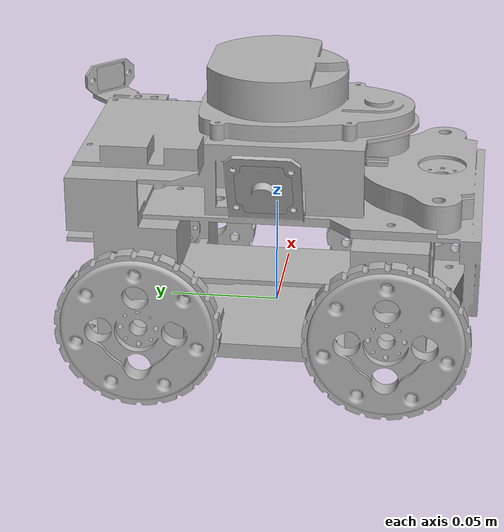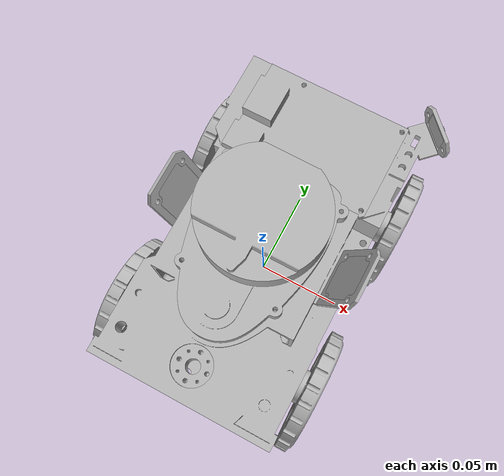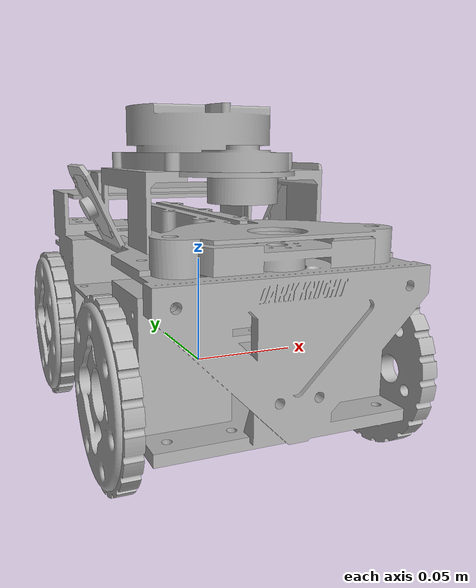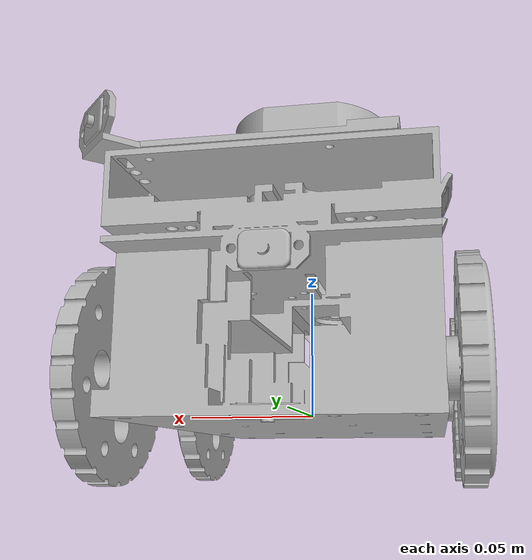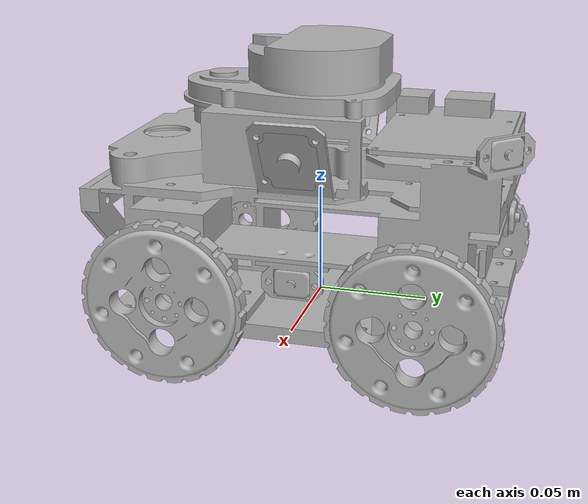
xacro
<?xml version="1.0" ?>
<robot name="darkie_maze_urdf" xmlns:xacro="http://www.ros.org/wiki/xacro">

<xacro:include filename="$(find darkie_maze_urdf_description)/urdf/materials.xacro" />
<xacro:include filename="$(find darkie_maze_urdf_description)/urdf/darkie_maze_urdf.ros2control" />
<xacro:include filename="$(find darkie_maze_urdf_description)/urdf/darkie_maze_urdf.gazebo" />
<link name="base_link">
  <inertial>
    <origin xyz="0.00014457353315521589 0.002656400548809099 0.03584925713705785" rpy="0 0 0"/>
    <mass value="0.29390296310653463"/>
    <inertia ixx="0.001205" iyy="0.000551" izz="0.001276" ixy="-1e-06" iyz="-3.2e-05" ixz="-2e-06"/>
  </inertial>
  <visual>
    <origin xyz="0 0 0" rpy="0 0 0"/>
    <geometry>
      <mesh filename="file://$(find darkie_maze_urdf_description)/meshes/base_link.stl" scale="0.001 0.001 0.001"/>
    </geometry>
    <material name="silver"/>
  </visual>
  <collision>
    <origin xyz="0 0 0" rpy="0 0 0"/>
    <geometry>
      <mesh filename="file://$(find darkie_maze_urdf_description)/meshes/base_link.stl" scale="0.001 0.001 0.001"/>
    </geometry>
  </collision>
</link>

<link name="lidar_top_1">
  <inertial>
    <origin xyz="-7.535587109046362e-07 0.00014401514588190112 0.010035646910176527" rpy="0 0 0"/>
    <mass value="0.057544028866058625"/>
    <inertia ixx="1.5e-05" iyy="1.7e-05" izz="2.9e-05" ixy="-0.0" iyz="-0.0" ixz="0.0"/>
  </inertial>
  <visual>
    <origin xyz="-0.0 -0.0005 -0.0992" rpy="0 0 0"/>
    <geometry>
      <mesh filename="file://$(find darkie_maze_urdf_description)/meshes/lidar_top_1.stl" scale="0.001 0.001 0.001"/>
    </geometry>
    <material name="silver"/>
  </visual>
  <collision>
    <origin xyz="-0.0 -0.0005 -0.0992" rpy="0 0 0"/>
    <geometry>
      <mesh filename="file://$(find darkie_maze_urdf_description)/meshes/lidar_top_1.stl" scale="0.001 0.001 0.001"/>
    </geometry>
  </collision>
</link>

<link name="lidar_bottom_1">
  <inertial>
    <origin xyz="-0.03099324634836214 -0.03846362431223608 0.002037131300966083" rpy="0 0 0"/>
    <mass value="0.04351090502849985"/>
    <inertia ixx="3.2e-05" iyy="1.1e-05" izz="4.2e-05" ixy="0.0" iyz="-2e-06" ixz="-0.0"/>
  </inertial>
  <visual>
    <origin xyz="-0.031 -0.0225 -0.092" rpy="0 0 0"/>
    <geometry>
      <mesh filename="file://$(find darkie_maze_urdf_description)/meshes/lidar_bottom_1.stl" scale="0.001 0.001 0.001"/>
    </geometry>
    <material name="silver"/>
  </visual>
  <collision>
    <origin xyz="-0.031 -0.0225 -0.092" rpy="0 0 0"/>
    <geometry>
      <mesh filename="file://$(find darkie_maze_urdf_description)/meshes/lidar_bottom_1.stl" scale="0.001 0.001 0.001"/>
    </geometry>
  </collision>
</link>

<link name="right_vl53lohsensor_1">
  <inertial>
    <origin xyz="-0.0046038229336554035 0.0010000010417378295 -0.003320723007513314" rpy="0 0 0"/>
    <mass value="0.0010511823088703786"/>
    <inertia ixx="0.0" iyy="0.0" izz="0.0" ixy="0.0" iyz="-0.0" ixz="0.0"/>
  </inertial>
  <visual>
    <origin xyz="-0.052 -0.0 -0.032" rpy="0 0 0"/>
    <geometry>
      <mesh filename="file://$(find darkie_maze_urdf_description)/meshes/right_vl53lohsensor_1.stl" scale="0.001 0.001 0.001"/>
    </geometry>
    <material name="silver"/>
  </visual>
  <collision>
    <origin xyz="-0.052 -0.0 -0.032" rpy="0 0 0"/>
    <geometry>
      <mesh filename="file://$(find darkie_maze_urdf_description)/meshes/right_vl53lohsensor_1.stl" scale="0.001 0.001 0.001"/>
    </geometry>
  </collision>
</link>

<link name="wheel_rb_1">
  <inertial>
    <origin xyz="0.007892487455887963 1.1324507998011768e-09 1.474514954580286e-16" rpy="0 0 0"/>
    <mass value="0.027706932944527023"/>
    <inertia ixx="2e-05" iyy="1e-05" izz="1e-05" ixy="-0.0" iyz="0.0" ixz="0.0"/>
  </inertial>
  <visual>
    <origin xyz="-0.052 0.055 -0.01125" rpy="0 0 0"/>
    <geometry>
      <mesh filename="file://$(find darkie_maze_urdf_description)/meshes/wheel_rb_1.stl" scale="0.001 0.001 0.001"/>
    </geometry>
    <material name="silver"/>
  </visual>
  <collision>
    <origin xyz="-0.052 0.055 -0.01125" rpy="0 0 0"/>
    <geometry>
      <mesh filename="file://$(find darkie_maze_urdf_description)/meshes/wheel_rb_1.stl" scale="0.001 0.001 0.001"/>
    </geometry>
  </collision>
</link>

<link name="wheel_r_1">
  <inertial>
    <origin xyz="0.00789248745588797 3.752553823233029e-14 1.474514954580286e-16" rpy="0 0 0"/>
    <mass value="0.027706932944527026"/>
    <inertia ixx="2e-05" iyy="1e-05" izz="1e-05" ixy="0.0" iyz="0.0" ixz="0.0"/>
  </inertial>
  <visual>
    <origin xyz="-0.052 -0.055 -0.01125" rpy="0 0 0"/>
    <geometry>
      <mesh filename="file://$(find darkie_maze_urdf_description)/meshes/wheel_r_1.stl" scale="0.001 0.001 0.001"/>
    </geometry>
    <material name="silver"/>
  </visual>
  <collision>
    <origin xyz="-0.052 -0.055 -0.01125" rpy="0 0 0"/>
    <geometry>
      <mesh filename="file://$(find darkie_maze_urdf_description)/meshes/wheel_r_1.stl" scale="0.001 0.001 0.001"/>
    </geometry>
  </collision>
</link>

<link name="wheel_l_1">
  <inertial>
    <origin xyz="-0.007892487455887977 -1.8780810240315304e-13 1.2836953722228372e-16" rpy="0 0 0"/>
    <mass value="0.027706932944526738"/>
    <inertia ixx="2e-05" iyy="1e-05" izz="1e-05" ixy="-0.0" iyz="0.0" ixz="-0.0"/>
  </inertial>
  <visual>
    <origin xyz="0.052 -0.055 -0.01125" rpy="0 0 0"/>
    <geometry>
      <mesh filename="file://$(find darkie_maze_urdf_description)/meshes/wheel_l_1.stl" scale="0.001 0.001 0.001"/>
    </geometry>
    <material name="silver"/>
  </visual>
  <collision>
    <origin xyz="0.052 -0.055 -0.01125" rpy="0 0 0"/>
    <geometry>
      <mesh filename="file://$(find darkie_maze_urdf_description)/meshes/wheel_l_1.stl" scale="0.001 0.001 0.001"/>
    </geometry>
  </collision>
</link>

<link name="wheel_lb_1">
  <inertial>
    <origin xyz="-0.007892487455887998 1.1326760709917671e-09 1.1102230246251565e-16" rpy="0 0 0"/>
    <mass value="0.02770693294452675"/>
    <inertia ixx="2e-05" iyy="1e-05" izz="1e-05" ixy="0.0" iyz="0.0" ixz="-0.0"/>
  </inertial>
  <visual>
    <origin xyz="0.052 0.055 -0.01125" rpy="0 0 0"/>
    <geometry>
      <mesh filename="file://$(find darkie_maze_urdf_description)/meshes/wheel_lb_1.stl" scale="0.001 0.001 0.001"/>
    </geometry>
    <material name="silver"/>
  </visual>
  <collision>
    <origin xyz="0.052 0.055 -0.01125" rpy="0 0 0"/>
    <geometry>
      <mesh filename="file://$(find darkie_maze_urdf_description)/meshes/wheel_lb_1.stl" scale="0.001 0.001 0.001"/>
    </geometry>
  </collision>
</link>

<link name="victim_motor_1">
  <inertial>
    <origin xyz="-3.670181655262696e-12 0.007496344867519475 0.005410423564407352" rpy="0 0 0"/>
    <mass value="0.022320490130029815"/>
    <inertia ixx="4e-06" iyy="9e-06" izz="1.3e-05" ixy="0.0" iyz="-0.0" ixz="0.0"/>
  </inertial>
  <visual>
    <origin xyz="0.0 0.075 -0.0586" rpy="0 0 0"/>
    <geometry>
      <mesh filename="file://$(find darkie_maze_urdf_description)/meshes/victim_motor_1.stl" scale="0.001 0.001 0.001"/>
    </geometry>
    <material name="silver"/>
  </visual>
  <collision>
    <origin xyz="0.0 0.075 -0.0586" rpy="0 0 0"/>
    <geometry>
      <mesh filename="file://$(find darkie_maze_urdf_description)/meshes/victim_motor_1.stl" scale="0.001 0.001 0.001"/>
    </geometry>
  </collision>
</link>

<link name="cam_left_1">
  <inertial>
    <origin xyz="0.0058314771754508915 -4.535915685835823e-14 -0.013831602834403017" rpy="0 0 0"/>
    <mass value="0.0031093626927875245"/>
    <inertia ixx="0.0" iyy="0.0" izz="0.0" ixy="-0.0" iyz="0.0" ixz="0.0"/>
  </inertial>
  <visual>
    <origin xyz="0.055246 -0.0 -0.090172" rpy="0 0 0"/>
    <geometry>
      <mesh filename="file://$(find darkie_maze_urdf_description)/meshes/cam_left_1.stl" scale="0.001 0.001 0.001"/>
    </geometry>
    <material name="silver"/>
  </visual>
  <collision>
    <origin xyz="0.055246 -0.0 -0.090172" rpy="0 0 0"/>
    <geometry>
      <mesh filename="file://$(find darkie_maze_urdf_description)/meshes/cam_left_1.stl" scale="0.001 0.001 0.001"/>
    </geometry>
  </collision>
</link>

<link name="raspberry_1">
  <inertial>
    <origin xyz="-0.049478316640243214 -0.026577635838432034 0.003738508801121504" rpy="0 0 0"/>
    <mass value="0.02567438212333893"/>
    <inertia ixx="6e-06" iyy="1.6e-05" izz="2.2e-05" ixy="-1e-06" iyz="0.0" ixz="1e-06"/>
  </inertial>
  <visual>
    <origin xyz="-0.039 -0.0825 -0.0786" rpy="0 0 0"/>
    <geometry>
      <mesh filename="file://$(find darkie_maze_urdf_description)/meshes/raspberry_1.stl" scale="0.001 0.001 0.001"/>
    </geometry>
    <material name="silver"/>
  </visual>
  <collision>
    <origin xyz="-0.039 -0.0825 -0.0786" rpy="0 0 0"/>
    <geometry>
      <mesh filename="file://$(find darkie_maze_urdf_description)/meshes/raspberry_1.stl" scale="0.001 0.001 0.001"/>
    </geometry>
  </collision>
</link>

<link name="cam_right_1">
  <inertial>
    <origin xyz="-0.0058314771754508846 -4.536708354738808e-14 -0.013831602834403031" rpy="0 0 0"/>
    <mass value="0.0031093626927875227"/>
    <inertia ixx="0.0" iyy="0.0" izz="0.0" ixy="0.0" iyz="0.0" ixz="-0.0"/>
  </inertial>
  <visual>
    <origin xyz="-0.055246 -0.0 -0.090172" rpy="0 0 0"/>
    <geometry>
      <mesh filename="file://$(find darkie_maze_urdf_description)/meshes/cam_right_1.stl" scale="0.001 0.001 0.001"/>
    </geometry>
    <material name="silver"/>
  </visual>
  <collision>
    <origin xyz="-0.055246 -0.0 -0.090172" rpy="0 0 0"/>
    <geometry>
      <mesh filename="file://$(find darkie_maze_urdf_description)/meshes/cam_right_1.stl" scale="0.001 0.001 0.001"/>
    </geometry>
  </collision>
</link>

<link name="right_vl53Loh_1">
  <inertial>
    <origin xyz="0.0006078258272393805 1.0132924640419289e-09 -0.006099999999999984" rpy="0 0 0"/>
    <mass value="0.0007203610395874502"/>
    <inertia ixx="0.0" iyy="0.0" izz="0.0" ixy="-0.0" iyz="0.0" ixz="-0.0"/>
  </inertial>
  <visual>
    <origin xyz="-0.051 -0.001 -0.029" rpy="0 0 0"/>
    <geometry>
      <mesh filename="file://$(find darkie_maze_urdf_description)/meshes/right_vl53Loh_1.stl" scale="0.001 0.001 0.001"/>
    </geometry>
    <material name="silver"/>
  </visual>
  <collision>
    <origin xyz="-0.051 -0.001 -0.029" rpy="0 0 0"/>
    <geometry>
      <mesh filename="file://$(find darkie_maze_urdf_description)/meshes/right_vl53Loh_1.stl" scale="0.001 0.001 0.001"/>
    </geometry>
  </collision>
</link>

<link name="45_vl53Loh_1">
  <inertial>
    <origin xyz="0.00043004016915793725 0.00043011912104089223 -0.0060999999999999804" rpy="0 0 0"/>
    <mass value="0.0007203610395874463"/>
    <inertia ixx="0.0" iyy="0.0" izz="0.0" ixy="0.0" iyz="0.0" ixz="0.0"/>
  </inertial>
  <visual>
    <origin xyz="-0.054849 -0.088121 -0.0938" rpy="0 0 0"/>
    <geometry>
      <mesh filename="file://$(find darkie_maze_urdf_description)/meshes/45_vl53Loh_1.stl" scale="0.001 0.001 0.001"/>
    </geometry>
    <material name="silver"/>
  </visual>
  <collision>
    <origin xyz="-0.054849 -0.088121 -0.0938" rpy="0 0 0"/>
    <geometry>
      <mesh filename="file://$(find darkie_maze_urdf_description)/meshes/45_vl53Loh_1.stl" scale="0.001 0.001 0.001"/>
    </geometry>
  </collision>
</link>

<link name="forward_vl53Loh_1">
  <inertial>
    <origin xyz="-1.349985175030193e-14 0.0011078269001230656 -0.0050999999999999795" rpy="0 0 0"/>
    <mass value="0.000720361039587451"/>
    <inertia ixx="0.0" iyy="0.0" izz="0.0" ixy="0.0" iyz="0.0" ixz="-0.0"/>
  </inertial>
  <visual>
    <origin xyz="0.0 -0.087 -0.0485" rpy="0 0 0"/>
    <geometry>
      <mesh filename="file://$(find darkie_maze_urdf_description)/meshes/forward_vl53Loh_1.stl" scale="0.001 0.001 0.001"/>
    </geometry>
    <material name="silver"/>
  </visual>
  <collision>
    <origin xyz="0.0 -0.087 -0.0485" rpy="0 0 0"/>
    <geometry>
      <mesh filename="file://$(find darkie_maze_urdf_description)/meshes/forward_vl53Loh_1.stl" scale="0.001 0.001 0.001"/>
    </geometry>
  </collision>
</link>

<link name="colorsensor_1">
  <inertial>
    <origin xyz="-2.894187717992555e-15 -0.005499998807907108 -3.4643270095192306e-05" rpy="0 0 0"/>
    <mass value="0.0016776553040116762"/>
    <inertia ixx="0.0" iyy="0.0" izz="0.0" ixy="0.0" iyz="-0.0" ixz="-0.0"/>
  </inertial>
  <visual>
    <origin xyz="-0.0 -0.0855 0.0035" rpy="0 0 0"/>
    <geometry>
      <mesh filename="file://$(find darkie_maze_urdf_description)/meshes/colorsensor_1.stl" scale="0.001 0.001 0.001"/>
    </geometry>
    <material name="silver"/>
  </visual>
  <collision>
    <origin xyz="-0.0 -0.0855 0.0035" rpy="0 0 0"/>
    <geometry>
      <mesh filename="file://$(find darkie_maze_urdf_description)/meshes/colorsensor_1.stl" scale="0.001 0.001 0.001"/>
    </geometry>
  </collision>
</link>

<joint name="lidar_joint" type="continuous">
  <origin xyz="-0.031 -0.022 0.0072" rpy="0 0 0"/>
  <parent link="lidar_bottom_1"/>
  <child link="lidar_top_1"/>
  <axis xyz="0.0 -0.0 1.0"/>
</joint>

<joint name="Rigid 11" type="fixed">
  <origin xyz="0.031 0.0225 0.092" rpy="0 0 0"/>
  <parent link="base_link"/>
  <child link="lidar_bottom_1"/>
</joint>

<joint name="Rigid 15" type="fixed">
  <origin xyz="0.052 0.0 0.032" rpy="0 0 0"/>
  <parent link="base_link"/>
  <child link="right_vl53lohsensor_1"/>
</joint>

<joint name="right_rear_wheel_joint" type="continuous">
  <origin xyz="0.052 -0.055 0.01125" rpy="0 0 0"/>
  <parent link="base_link"/>
  <child link="wheel_rb_1"/>
  <axis xyz="1.0 0.0 0.0"/>
</joint>

<joint name="right_front_wheel_joint" type="continuous">
  <origin xyz="0.052 0.055 0.01125" rpy="0 0 0"/>
  <parent link="base_link"/>
  <child link="wheel_r_1"/>
  <axis xyz="-1.0 0.0 0.0"/>
</joint>

<joint name="left_front_wheel_joint" type="continuous">
  <origin xyz="-0.052 0.055 0.01125" rpy="0 0 0"/>
  <parent link="base_link"/>
  <child link="wheel_l_1"/>
  <axis xyz="-1.0 0.0 0.0"/>
</joint>

<joint name="left_rear_wheel_joint" type="continuous">
  <origin xyz="-0.052 -0.055 0.01125" rpy="0 0 0"/>
  <parent link="base_link"/>
  <child link="wheel_lb_1"/>
  <axis xyz="1.0 0.0 0.0"/>
</joint>

<joint name="lidar_joint" type="continuous">
  <origin xyz="0.0 -0.075 0.0586" rpy="0 0 0"/>
  <parent link="base_link"/>
  <child link="victim_motor_1"/>
  <axis xyz="0.0 0.0 -1.0"/>
</joint>

<joint name="Rigid 23" type="fixed">
  <origin xyz="-0.055246 0.0 0.090172" rpy="0 0 0"/>
  <parent link="base_link"/>
  <child link="cam_left_1"/>
</joint>

<joint name="Rigid 24" type="fixed">
  <origin xyz="0.039 0.0825 0.0786" rpy="0 0 0"/>
  <parent link="base_link"/>
  <child link="raspberry_1"/>
</joint>

<joint name="Rigid 25" type="fixed">
  <origin xyz="0.055246 0.0 0.090172" rpy="0 0 0"/>
  <parent link="base_link"/>
  <child link="cam_right_1"/>
</joint>

<joint name="Rigid 26" type="fixed">
  <origin xyz="-0.001 0.001 -0.003" rpy="0 0 0"/>
  <parent link="right_vl53lohsensor_1"/>
  <child link="right_vl53Loh_1"/>
</joint>

<joint name="Rigid 27" type="fixed">
  <origin xyz="0.054849 0.088121 0.0938" rpy="0 0 0"/>
  <parent link="base_link"/>
  <child link="45_vl53Loh_1"/>
</joint>

<joint name="Rigid 28" type="fixed">
  <origin xyz="0.0 0.087 0.0485" rpy="0 0 0"/>
  <parent link="base_link"/>
  <child link="forward_vl53Loh_1"/>
</joint>

<joint name="Rigid 29" type="fixed">
  <origin xyz="0.0 0.0855 -0.0035" rpy="0 0 0"/>
  <parent link="base_link"/>
  <child link="colorsensor_1"/>
</joint>

<ros2_control name="DynamixelSystem" type="system">

  <hardware>
    <plugin>dynamixel_hardware/DynamixelHardware</plugin>

    <param name="device_name">/dev/ttyACM0</param>
    <param name="baud_rate">1000000</param>
  </hardware>

  <joint name="left_front_wheel_joint">

    <param name="id">1</param>

    <command_interface name="velocity"/>

    <state_interface name="position"/>
    <state_interface name="velocity"/>

  </joint>

  <joint name="right_front_wheel_joint">

    <param name="id">2</param>

    <command_interface name="velocity"/>

    <state_interface name="position"/>
    <state_interface name="velocity"/>

  </joint>

  <joint name="left_rear_wheel_joint">

    <param name="id">3</param>

    <command_interface name="velocity"/>

    <state_interface name="position"/>
    <state_interface name="velocity"/>

  </joint>

  <joint name="right_rear_wheel_joint">

    <param name="id">4</param>

    <command_interface name="velocity"/>

    <state_interface name="position"/>
    <state_interface name="velocity"/>

  </joint>

<joint name="lidar_joint">
<param name="id">5</param>
    <command_interface name="position"/>
    <state_interface name="velocity"/>
    <state_interface name="position"/>
  </joint>

</ros2_control>

</robot>

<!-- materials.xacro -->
<robot name="darkie_maze_urdf" xmlns:xacro="http://www.ros.org/wiki/xacro" >

<material name="silver">
  <color rgba="0.700 0.700 0.700 1.000"/>
</material>

</robot>

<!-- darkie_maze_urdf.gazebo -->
<robot name="darkie_maze_urdf" xmlns:xacro="http://www.ros.org/wiki/xacro" >

<xacro:property name="body_color" value="Gazebo/Silver" />

<gazebo reference="base_link">
  <material>${body_color}</material>
  <mu1>0.2</mu1>
  <mu2>0.2</mu2>
  <self_collide>true</self_collide>
  <gravity>true</gravity>
</gazebo>

<gazebo reference="lidar_top_1">
  <material>${body_color}</material>
  <mu1>0.2</mu1>
  <mu2>0.2</mu2>
  <self_collide>true</self_collide>
</gazebo>

<gazebo reference="lidar_bottom_1">
  <material>${body_color}</material>
  <mu1>0.2</mu1>
  <mu2>0.2</mu2>
  <self_collide>true</self_collide>
</gazebo>

<gazebo reference="right_vl53lohsensor_1">
  <material>${body_color}</material>
  <mu1>0.2</mu1>
  <mu2>0.2</mu2>
  <self_collide>true</self_collide>
</gazebo>

<gazebo reference="wheel_rb_1">
  <material>${body_color}</material>
  <mu1>0.2</mu1>
  <mu2>0.2</mu2>
  <self_collide>true</self_collide>
</gazebo>

<gazebo reference="wheel_r_1">
  <material>${body_color}</material>
  <mu1>0.2</mu1>
  <mu2>0.2</mu2>
  <self_collide>true</self_collide>
</gazebo>

<gazebo reference="wheel_l_1">
  <material>${body_color}</material>
  <mu1>0.2</mu1>
  <mu2>0.2</mu2>
  <self_collide>true</self_collide>
</gazebo>

<gazebo reference="wheel_lb_1">
  <material>${body_color}</material>
  <mu1>0.2</mu1>
  <mu2>0.2</mu2>
  <self_collide>true</self_collide>
</gazebo>

<gazebo reference="victim_motor_1">
  <material>${body_color}</material>
  <mu1>0.2</mu1>
  <mu2>0.2</mu2>
  <self_collide>true</self_collide>
</gazebo>

<gazebo reference="cam_left_1">
  <material>${body_color}</material>
  <mu1>0.2</mu1>
  <mu2>0.2</mu2>
  <self_collide>true</self_collide>
</gazebo>

<gazebo reference="raspberry_1">
  <material>${body_color}</material>
  <mu1>0.2</mu1>
  <mu2>0.2</mu2>
  <self_collide>true</self_collide>
</gazebo>

<gazebo reference="cam_right_1">
  <material>${body_color}</material>
  <mu1>0.2</mu1>
  <mu2>0.2</mu2>
  <self_collide>true</self_collide>
</gazebo>

<gazebo reference="right_vl53Loh_1">
  <material>${body_color}</material>
  <mu1>0.2</mu1>
  <mu2>0.2</mu2>
  <self_collide>true</self_collide>
</gazebo>

<gazebo reference="45_vl53Loh_1">
  <material>${body_color}</material>
  <mu1>0.2</mu1>
  <mu2>0.2</mu2>
  <self_collide>true</self_collide>
</gazebo>

<gazebo reference="forward_vl53Loh_1">
  <material>${body_color}</material>
  <mu1>0.2</mu1>
  <mu2>0.2</mu2>
  <self_collide>true</self_collide>
</gazebo>

<gazebo reference="colorsensor_1">
  <material>${body_color}</material>
  <mu1>0.2</mu1>
  <mu2>0.2</mu2>
  <self_collide>true</self_collide>
</gazebo>

</robot>
